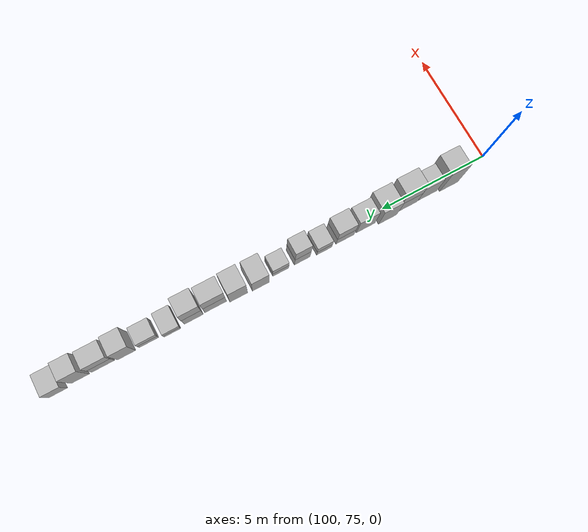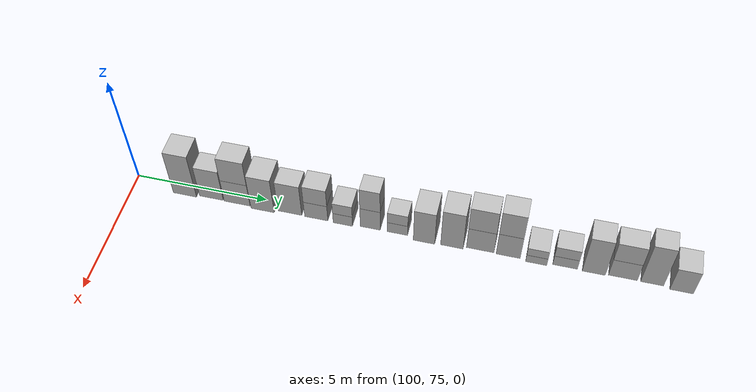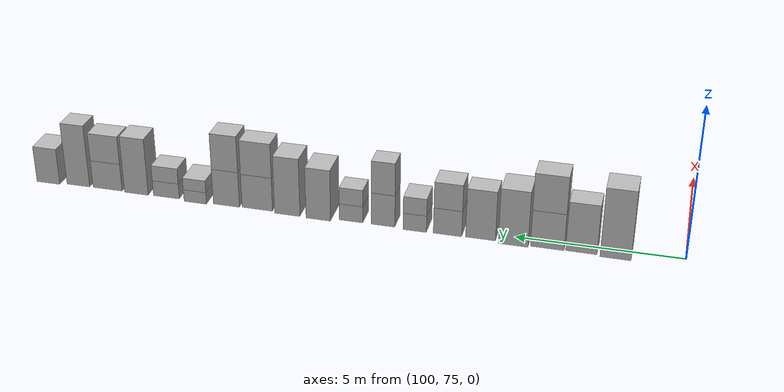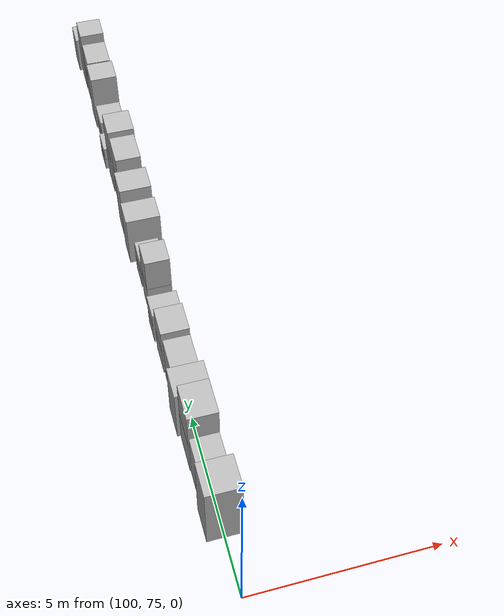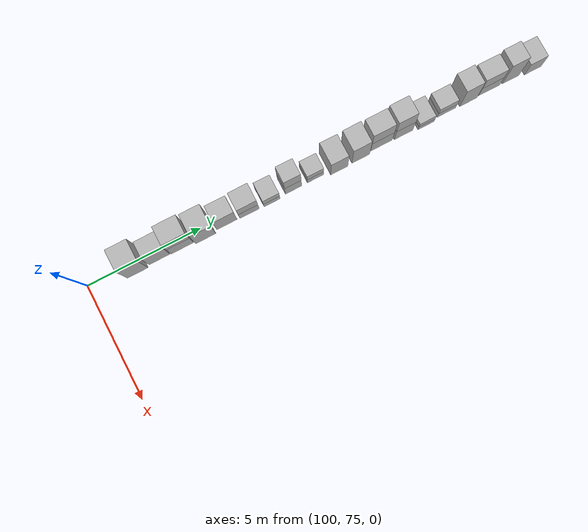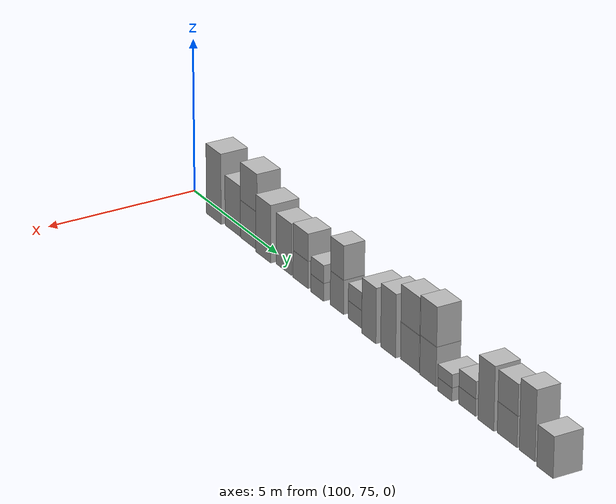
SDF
<sdf version="1.5">
 <world name="default">
  <model name="ground_plane">
   <static>true</static>
   <link name="link">
    <collision name="collision">
     <geometry><plane><normal>0 0 1</normal><size>250 250</size></plane></geometry>
     <surface><friction><ode><mu>1</mu><mu2>1</mu2></ode></friction></surface>
    </collision>
    <visual name="grass">
     <cast_shadows>false</cast_shadows>
     <geometry><mesh><uri>file://grass_plane/meshes/grass_plane.dae</uri></mesh></geometry>
    </visual>
   </link>
  </model>
  <model name="Cardboard_box_447">
   <link name="link_0">
    <pose>100 77 0 0 0 0</pose>
    <inertial>
     <mass>1</mass>
     <inertia>
      <ixx>0.166667</ixx>
      <ixy>0</ixy>
      <ixz>0</ixz>
      <iyy>0.166667</iyy>
      <iyz>0</iyz>
      <izz>0.166667</izz>
     </inertia>
    </inertial>
    <collision name="collision">
     <geometry>
      <mesh>
       <uri>model://Cardboard_box/meshes/cardboard_box.dae</uri>
       <scale>2.33396862583 2.27019564261 5.81903263411</scale>
      </mesh>
     </geometry>
    </collision>
    <visual name="visual">
     <geometry>
      <mesh>
       <uri>model://Cardboard_box/meshes/cardboard_box.dae</uri>
       <scale>2.33396862583 2.27019564261 5.81903263411</scale>
      </mesh>
     </geometry>
    </visual>
   </link>
   <static>1</static>
  </model>
  <model name="Cardboard_box_448">
   <link name="link_0">
    <pose>100 78 0 0 0 0</pose>
    <inertial>
     <mass>1</mass>
     <inertia>
      <ixx>0.166667</ixx>
      <ixy>0</ixy>
      <ixz>0</ixz>
      <iyy>0.166667</iyy>
      <iyz>0</iyz>
      <izz>0.166667</izz>
     </inertia>
    </inertial>
    <collision name="collision">
     <geometry>
      <mesh>
       <uri>model://Cardboard_box/meshes/cardboard_box.dae</uri>
       <scale>1.91822745753 2.30396470303 4.15649201687</scale>
      </mesh>
     </geometry>
    </collision>
    <visual name="visual">
     <geometry>
      <mesh>
       <uri>model://Cardboard_box/meshes/cardboard_box.dae</uri>
       <scale>1.91822745753 2.30396470303 4.15649201687</scale>
      </mesh>
     </geometry>
    </visual>
   </link>
   <static>1</static>
  </model>
  <model name="Cardboard_box_449">
   <link name="link_0">
    <pose>100 79 0 0 0 0</pose>
    <inertial>
     <mass>1</mass>
     <inertia>
      <ixx>0.166667</ixx>
      <ixy>0</ixy>
      <ixz>0</ixz>
      <iyy>0.166667</iyy>
      <iyz>0</iyz>
      <izz>0.166667</izz>
     </inertia>
    </inertial>
    <collision name="collision">
     <geometry>
      <mesh>
       <uri>model://Cardboard_box/meshes/cardboard_box.dae</uri>
       <scale>2.01274408284 2.49988306649 3.09534436703</scale>
      </mesh>
     </geometry>
    </collision>
    <visual name="visual">
     <geometry>
      <mesh>
       <uri>model://Cardboard_box/meshes/cardboard_box.dae</uri>
       <scale>2.01274408284 2.49988306649 3.09534436703</scale>
      </mesh>
     </geometry>
    </visual>
   </link>
   <static>1</static>
  </model>
  <model name="Cardboard_box_top_449">
   <link name="link_0">
    <pose>100 79 1.23813774681 0 0 0</pose>
    <inertial>
     <mass>1</mass>
     <inertia>
      <ixx>0.166667</ixx>
      <ixy>0</ixy>
      <ixz>0</ixz>
      <iyy>0.166667</iyy>
      <iyz>0</iyz>
      <izz>0.166667</izz>
     </inertia>
    </inertial>
    <collision name="collision">
     <geometry>
      <mesh>
       <uri>model://Cardboard_box/meshes/cardboard_box.dae</uri>
       <scale>2.01274408284 2.49988306649 3.09534436703</scale>
      </mesh>
     </geometry>
    </collision>
    <visual name="visual">
     <geometry>
      <mesh>
       <uri>model://Cardboard_box/meshes/cardboard_box.dae</uri>
       <scale>2.01274408284 2.49988306649 3.09534436703</scale>
      </mesh>
     </geometry>
    </visual>
   </link>
   <static>1</static>
  </model>
  <model name="Cardboard_box_450">
   <link name="link_0">
    <pose>100 80 0 0 0 0</pose>
    <inertial>
     <mass>1</mass>
     <inertia>
      <ixx>0.166667</ixx>
      <ixy>0</ixy>
      <ixz>0</ixz>
      <iyy>0.166667</iyy>
      <iyz>0</iyz>
      <izz>0.166667</izz>
     </inertia>
    </inertial>
    <collision name="collision">
     <geometry>
      <mesh>
       <uri>model://Cardboard_box/meshes/cardboard_box.dae</uri>
       <scale>2.43324160354 2.22829430216 4.70998665054</scale>
      </mesh>
     </geometry>
    </collision>
    <visual name="visual">
     <geometry>
      <mesh>
       <uri>model://Cardboard_box/meshes/cardboard_box.dae</uri>
       <scale>2.43324160354 2.22829430216 4.70998665054</scale>
      </mesh>
     </geometry>
    </visual>
   </link>
   <static>1</static>
  </model>
  <model name="Cardboard_box_451">
   <link name="link_0">
    <pose>100 81 0 0 0 0</pose>
    <inertial>
     <mass>1</mass>
     <inertia>
      <ixx>0.166667</ixx>
      <ixy>0</ixy>
      <ixz>0</ixz>
      <iyy>0.166667</iyy>
      <iyz>0</iyz>
      <izz>0.166667</izz>
     </inertia>
    </inertial>
    <collision name="collision">
     <geometry>
      <mesh>
       <uri>model://Cardboard_box/meshes/cardboard_box.dae</uri>
       <scale>1.85269713805 2.26463404516 4.1896618565</scale>
      </mesh>
     </geometry>
    </collision>
    <visual name="visual">
     <geometry>
      <mesh>
       <uri>model://Cardboard_box/meshes/cardboard_box.dae</uri>
       <scale>1.85269713805 2.26463404516 4.1896618565</scale>
      </mesh>
     </geometry>
    </visual>
   </link>
   <static>1</static>
  </model>
  <model name="Cardboard_box_452">
   <link name="link_0">
    <pose>100 82 0 0 0 0</pose>
    <inertial>
     <mass>1</mass>
     <inertia>
      <ixx>0.166667</ixx>
      <ixy>0</ixy>
      <ixz>0</ixz>
      <iyy>0.166667</iyy>
      <iyz>0</iyz>
      <izz>0.166667</izz>
     </inertia>
    </inertial>
    <collision name="collision">
     <geometry>
      <mesh>
       <uri>model://Cardboard_box/meshes/cardboard_box.dae</uri>
       <scale>1.95341575762 2.17920243876 2.20509427299</scale>
      </mesh>
     </geometry>
    </collision>
    <visual name="visual">
     <geometry>
      <mesh>
       <uri>model://Cardboard_box/meshes/cardboard_box.dae</uri>
       <scale>1.95341575762 2.17920243876 2.20509427299</scale>
      </mesh>
     </geometry>
    </visual>
   </link>
   <static>1</static>
  </model>
  <model name="Cardboard_box_top_452">
   <link name="link_0">
    <pose>100 82 0.882037709195 0 0 0</pose>
    <inertial>
     <mass>1</mass>
     <inertia>
      <ixx>0.166667</ixx>
      <ixy>0</ixy>
      <ixz>0</ixz>
      <iyy>0.166667</iyy>
      <iyz>0</iyz>
      <izz>0.166667</izz>
     </inertia>
    </inertial>
    <collision name="collision">
     <geometry>
      <mesh>
       <uri>model://Cardboard_box/meshes/cardboard_box.dae</uri>
       <scale>1.95341575762 2.17920243876 2.20509427299</scale>
      </mesh>
     </geometry>
    </collision>
    <visual name="visual">
     <geometry>
      <mesh>
       <uri>model://Cardboard_box/meshes/cardboard_box.dae</uri>
       <scale>1.95341575762 2.17920243876 2.20509427299</scale>
      </mesh>
     </geometry>
    </visual>
   </link>
   <static>1</static>
  </model>
  <model name="Cardboard_box_453">
   <link name="link_0">
    <pose>100 83 0 0 0 0</pose>
    <inertial>
     <mass>1</mass>
     <inertia>
      <ixx>0.166667</ixx>
      <ixy>0</ixy>
      <ixz>0</ixz>
      <iyy>0.166667</iyy>
      <iyz>0</iyz>
      <izz>0.166667</izz>
     </inertia>
    </inertial>
    <collision name="collision">
     <geometry>
      <mesh>
       <uri>model://Cardboard_box/meshes/cardboard_box.dae</uri>
       <scale>2.08894755823 1.81040913457 1.43966650593</scale>
      </mesh>
     </geometry>
    </collision>
    <visual name="visual">
     <geometry>
      <mesh>
       <uri>model://Cardboard_box/meshes/cardboard_box.dae</uri>
       <scale>2.08894755823 1.81040913457 1.43966650593</scale>
      </mesh>
     </geometry>
    </visual>
   </link>
   <static>1</static>
  </model>
  <model name="Cardboard_box_top_453">
   <link name="link_0">
    <pose>100 83 0.575866602373 0 0 0</pose>
    <inertial>
     <mass>1</mass>
     <inertia>
      <ixx>0.166667</ixx>
      <ixy>0</ixy>
      <ixz>0</ixz>
      <iyy>0.166667</iyy>
      <iyz>0</iyz>
      <izz>0.166667</izz>
     </inertia>
    </inertial>
    <collision name="collision">
     <geometry>
      <mesh>
       <uri>model://Cardboard_box/meshes/cardboard_box.dae</uri>
       <scale>2.08894755823 1.81040913457 1.43966650593</scale>
      </mesh>
     </geometry>
    </collision>
    <visual name="visual">
     <geometry>
      <mesh>
       <uri>model://Cardboard_box/meshes/cardboard_box.dae</uri>
       <scale>2.08894755823 1.81040913457 1.43966650593</scale>
      </mesh>
     </geometry>
    </visual>
   </link>
   <static>1</static>
  </model>
  <model name="Cardboard_box_454">
   <link name="link_0">
    <pose>100 84 0 0 0 0</pose>
    <inertial>
     <mass>1</mass>
     <inertia>
      <ixx>0.166667</ixx>
      <ixy>0</ixy>
      <ixz>0</ixz>
      <iyy>0.166667</iyy>
      <iyz>0</iyz>
      <izz>0.166667</izz>
     </inertia>
    </inertial>
    <collision name="collision">
     <geometry>
      <mesh>
       <uri>model://Cardboard_box/meshes/cardboard_box.dae</uri>
       <scale>1.76180157544 1.85529118728 2.74051122874</scale>
      </mesh>
     </geometry>
    </collision>
    <visual name="visual">
     <geometry>
      <mesh>
       <uri>model://Cardboard_box/meshes/cardboard_box.dae</uri>
       <scale>1.76180157544 1.85529118728 2.74051122874</scale>
      </mesh>
     </geometry>
    </visual>
   </link>
   <static>1</static>
  </model>
  <model name="Cardboard_box_top_454">
   <link name="link_0">
    <pose>100 84 1.09620449149 0 0 0</pose>
    <inertial>
     <mass>1</mass>
     <inertia>
      <ixx>0.166667</ixx>
      <ixy>0</ixy>
      <ixz>0</ixz>
      <iyy>0.166667</iyy>
      <iyz>0</iyz>
      <izz>0.166667</izz>
     </inertia>
    </inertial>
    <collision name="collision">
     <geometry>
      <mesh>
       <uri>model://Cardboard_box/meshes/cardboard_box.dae</uri>
       <scale>1.76180157544 1.85529118728 2.74051122874</scale>
      </mesh>
     </geometry>
    </collision>
    <visual name="visual">
     <geometry>
      <mesh>
       <uri>model://Cardboard_box/meshes/cardboard_box.dae</uri>
       <scale>1.76180157544 1.85529118728 2.74051122874</scale>
      </mesh>
     </geometry>
    </visual>
   </link>
   <static>1</static>
  </model>
  <model name="Cardboard_box_455">
   <link name="link_0">
    <pose>100 85 0 0 0 0</pose>
    <inertial>
     <mass>1</mass>
     <inertia>
      <ixx>0.166667</ixx>
      <ixy>0</ixy>
      <ixz>0</ixz>
      <iyy>0.166667</iyy>
      <iyz>0</iyz>
      <izz>0.166667</izz>
     </inertia>
    </inertial>
    <collision name="collision">
     <geometry>
      <mesh>
       <uri>model://Cardboard_box/meshes/cardboard_box.dae</uri>
       <scale>1.75421698773 1.86614398578 1.4213398891</scale>
      </mesh>
     </geometry>
    </collision>
    <visual name="visual">
     <geometry>
      <mesh>
       <uri>model://Cardboard_box/meshes/cardboard_box.dae</uri>
       <scale>1.75421698773 1.86614398578 1.4213398891</scale>
      </mesh>
     </geometry>
    </visual>
   </link>
   <static>1</static>
  </model>
  <model name="Cardboard_box_top_455">
   <link name="link_0">
    <pose>100 85 0.568535955639 0 0 0</pose>
    <inertial>
     <mass>1</mass>
     <inertia>
      <ixx>0.166667</ixx>
      <ixy>0</ixy>
      <ixz>0</ixz>
      <iyy>0.166667</iyy>
      <iyz>0</iyz>
      <izz>0.166667</izz>
     </inertia>
    </inertial>
    <collision name="collision">
     <geometry>
      <mesh>
       <uri>model://Cardboard_box/meshes/cardboard_box.dae</uri>
       <scale>1.75421698773 1.86614398578 1.4213398891</scale>
      </mesh>
     </geometry>
    </collision>
    <visual name="visual">
     <geometry>
      <mesh>
       <uri>model://Cardboard_box/meshes/cardboard_box.dae</uri>
       <scale>1.75421698773 1.86614398578 1.4213398891</scale>
      </mesh>
     </geometry>
    </visual>
   </link>
   <static>1</static>
  </model>
  <model name="Cardboard_box_456">
   <link name="link_0">
    <pose>100 86 0 0 0 0</pose>
    <inertial>
     <mass>1</mass>
     <inertia>
      <ixx>0.166667</ixx>
      <ixy>0</ixy>
      <ixz>0</ixz>
      <iyy>0.166667</iyy>
      <iyz>0</iyz>
      <izz>0.166667</izz>
     </inertia>
    </inertial>
    <collision name="collision">
     <geometry>
      <mesh>
       <uri>model://Cardboard_box/meshes/cardboard_box.dae</uri>
       <scale>2.48885763139 1.95519050598 4.41540428919</scale>
      </mesh>
     </geometry>
    </collision>
    <visual name="visual">
     <geometry>
      <mesh>
       <uri>model://Cardboard_box/meshes/cardboard_box.dae</uri>
       <scale>2.48885763139 1.95519050598 4.41540428919</scale>
      </mesh>
     </geometry>
    </visual>
   </link>
   <static>1</static>
  </model>
  <model name="Cardboard_box_457">
   <link name="link_0">
    <pose>100 87 0 0 0 0</pose>
    <inertial>
     <mass>1</mass>
     <inertia>
      <ixx>0.166667</ixx>
      <ixy>0</ixy>
      <ixz>0</ixz>
      <iyy>0.166667</iyy>
      <iyz>0</iyz>
      <izz>0.166667</izz>
     </inertia>
    </inertial>
    <collision name="collision">
     <geometry>
      <mesh>
       <uri>model://Cardboard_box/meshes/cardboard_box.dae</uri>
       <scale>2.33738241199 2.03751161731 5.01915116326</scale>
      </mesh>
     </geometry>
    </collision>
    <visual name="visual">
     <geometry>
      <mesh>
       <uri>model://Cardboard_box/meshes/cardboard_box.dae</uri>
       <scale>2.33738241199 2.03751161731 5.01915116326</scale>
      </mesh>
     </geometry>
    </visual>
   </link>
   <static>1</static>
  </model>
  <model name="Cardboard_box_458">
   <link name="link_0">
    <pose>100 88 0 0 0 0</pose>
    <inertial>
     <mass>1</mass>
     <inertia>
      <ixx>0.166667</ixx>
      <ixy>0</ixy>
      <ixz>0</ixz>
      <iyy>0.166667</iyy>
      <iyz>0</iyz>
      <izz>0.166667</izz>
     </inertia>
    </inertial>
    <collision name="collision">
     <geometry>
      <mesh>
       <uri>model://Cardboard_box/meshes/cardboard_box.dae</uri>
       <scale>1.86085005303 2.48178522059 2.92962249433</scale>
      </mesh>
     </geometry>
    </collision>
    <visual name="visual">
     <geometry>
      <mesh>
       <uri>model://Cardboard_box/meshes/cardboard_box.dae</uri>
       <scale>1.86085005303 2.48178522059 2.92962249433</scale>
      </mesh>
     </geometry>
    </visual>
   </link>
   <static>1</static>
  </model>
  <model name="Cardboard_box_top_458">
   <link name="link_0">
    <pose>100 88 1.17184899773 0 0 0</pose>
    <inertial>
     <mass>1</mass>
     <inertia>
      <ixx>0.166667</ixx>
      <ixy>0</ixy>
      <ixz>0</ixz>
      <iyy>0.166667</iyy>
      <iyz>0</iyz>
      <izz>0.166667</izz>
     </inertia>
    </inertial>
    <collision name="collision">
     <geometry>
      <mesh>
       <uri>model://Cardboard_box/meshes/cardboard_box.dae</uri>
       <scale>1.86085005303 2.48178522059 2.92962249433</scale>
      </mesh>
     </geometry>
    </collision>
    <visual name="visual">
     <geometry>
      <mesh>
       <uri>model://Cardboard_box/meshes/cardboard_box.dae</uri>
       <scale>1.86085005303 2.48178522059 2.92962249433</scale>
      </mesh>
     </geometry>
    </visual>
   </link>
   <static>1</static>
  </model>
  <model name="Cardboard_box_459">
   <link name="link_0">
    <pose>100 89 0 0 0 0</pose>
    <inertial>
     <mass>1</mass>
     <inertia>
      <ixx>0.166667</ixx>
      <ixy>0</ixy>
      <ixz>0</ixz>
      <iyy>0.166667</iyy>
      <iyz>0</iyz>
      <izz>0.166667</izz>
     </inertia>
    </inertial>
    <collision name="collision">
     <geometry>
      <mesh>
       <uri>model://Cardboard_box/meshes/cardboard_box.dae</uri>
       <scale>1.9972055246 2.153377451 3.09245053398</scale>
      </mesh>
     </geometry>
    </collision>
    <visual name="visual">
     <geometry>
      <mesh>
       <uri>model://Cardboard_box/meshes/cardboard_box.dae</uri>
       <scale>1.9972055246 2.153377451 3.09245053398</scale>
      </mesh>
     </geometry>
    </visual>
   </link>
   <static>1</static>
  </model>
  <model name="Cardboard_box_top_459">
   <link name="link_0">
    <pose>100 89 1.23698021359 0 0 0</pose>
    <inertial>
     <mass>1</mass>
     <inertia>
      <ixx>0.166667</ixx>
      <ixy>0</ixy>
      <ixz>0</ixz>
      <iyy>0.166667</iyy>
      <iyz>0</iyz>
      <izz>0.166667</izz>
     </inertia>
    </inertial>
    <collision name="collision">
     <geometry>
      <mesh>
       <uri>model://Cardboard_box/meshes/cardboard_box.dae</uri>
       <scale>1.9972055246 2.153377451 3.09245053398</scale>
      </mesh>
     </geometry>
    </collision>
    <visual name="visual">
     <geometry>
      <mesh>
       <uri>model://Cardboard_box/meshes/cardboard_box.dae</uri>
       <scale>1.9972055246 2.153377451 3.09245053398</scale>
      </mesh>
     </geometry>
    </visual>
   </link>
   <static>1</static>
  </model>
  <model name="Cardboard_box_460">
   <link name="link_0">
    <pose>100 90 0 0 0 0</pose>
    <inertial>
     <mass>1</mass>
     <inertia>
      <ixx>0.166667</ixx>
      <ixy>0</ixy>
      <ixz>0</ixz>
      <iyy>0.166667</iyy>
      <iyz>0</iyz>
      <izz>0.166667</izz>
     </inertia>
    </inertial>
    <collision name="collision">
     <geometry>
      <mesh>
       <uri>model://Cardboard_box/meshes/cardboard_box.dae</uri>
       <scale>2.39316343854 1.86877877137 1.03770554003</scale>
      </mesh>
     </geometry>
    </collision>
    <visual name="visual">
     <geometry>
      <mesh>
       <uri>model://Cardboard_box/meshes/cardboard_box.dae</uri>
       <scale>2.39316343854 1.86877877137 1.03770554003</scale>
      </mesh>
     </geometry>
    </visual>
   </link>
   <static>1</static>
  </model>
  <model name="Cardboard_box_top_460">
   <link name="link_0">
    <pose>100 90 0.41508221601 0 0 0</pose>
    <inertial>
     <mass>1</mass>
     <inertia>
      <ixx>0.166667</ixx>
      <ixy>0</ixy>
      <ixz>0</ixz>
      <iyy>0.166667</iyy>
      <iyz>0</iyz>
      <izz>0.166667</izz>
     </inertia>
    </inertial>
    <collision name="collision">
     <geometry>
      <mesh>
       <uri>model://Cardboard_box/meshes/cardboard_box.dae</uri>
       <scale>2.39316343854 1.86877877137 1.03770554003</scale>
      </mesh>
     </geometry>
    </collision>
    <visual name="visual">
     <geometry>
      <mesh>
       <uri>model://Cardboard_box/meshes/cardboard_box.dae</uri>
       <scale>2.39316343854 1.86877877137 1.03770554003</scale>
      </mesh>
     </geometry>
    </visual>
   </link>
   <static>1</static>
  </model>
  <model name="Cardboard_box_461">
   <link name="link_0">
    <pose>100 91 0 0 0 0</pose>
    <inertial>
     <mass>1</mass>
     <inertia>
      <ixx>0.166667</ixx>
      <ixy>0</ixy>
      <ixz>0</ixz>
      <iyy>0.166667</iyy>
      <iyz>0</iyz>
      <izz>0.166667</izz>
     </inertia>
    </inertial>
    <collision name="collision">
     <geometry>
      <mesh>
       <uri>model://Cardboard_box/meshes/cardboard_box.dae</uri>
       <scale>1.9126142518 2.16927970256 1.34473200062</scale>
      </mesh>
     </geometry>
    </collision>
    <visual name="visual">
     <geometry>
      <mesh>
       <uri>model://Cardboard_box/meshes/cardboard_box.dae</uri>
       <scale>1.9126142518 2.16927970256 1.34473200062</scale>
      </mesh>
     </geometry>
    </visual>
   </link>
   <static>1</static>
  </model>
  <model name="Cardboard_box_top_461">
   <link name="link_0">
    <pose>100 91 0.537892800249 0 0 0</pose>
    <inertial>
     <mass>1</mass>
     <inertia>
      <ixx>0.166667</ixx>
      <ixy>0</ixy>
      <ixz>0</ixz>
      <iyy>0.166667</iyy>
      <iyz>0</iyz>
      <izz>0.166667</izz>
     </inertia>
    </inertial>
    <collision name="collision">
     <geometry>
      <mesh>
       <uri>model://Cardboard_box/meshes/cardboard_box.dae</uri>
       <scale>1.9126142518 2.16927970256 1.34473200062</scale>
      </mesh>
     </geometry>
    </collision>
    <visual name="visual">
     <geometry>
      <mesh>
       <uri>model://Cardboard_box/meshes/cardboard_box.dae</uri>
       <scale>1.9126142518 2.16927970256 1.34473200062</scale>
      </mesh>
     </geometry>
    </visual>
   </link>
   <static>1</static>
  </model>
  <model name="Cardboard_box_462">
   <link name="link_0">
    <pose>100 92 0 0 0 0</pose>
    <inertial>
     <mass>1</mass>
     <inertia>
      <ixx>0.166667</ixx>
      <ixy>0</ixy>
      <ixz>0</ixz>
      <iyy>0.166667</iyy>
      <iyz>0</iyz>
      <izz>0.166667</izz>
     </inertia>
    </inertial>
    <collision name="collision">
     <geometry>
      <mesh>
       <uri>model://Cardboard_box/meshes/cardboard_box.dae</uri>
       <scale>2.06452398165 2.00991684175 4.99749058875</scale>
      </mesh>
     </geometry>
    </collision>
    <visual name="visual">
     <geometry>
      <mesh>
       <uri>model://Cardboard_box/meshes/cardboard_box.dae</uri>
       <scale>2.06452398165 2.00991684175 4.99749058875</scale>
      </mesh>
     </geometry>
    </visual>
   </link>
   <static>1</static>
  </model>
  <model name="Cardboard_box_463">
   <link name="link_0">
    <pose>100 93 0 0 0 0</pose>
    <inertial>
     <mass>1</mass>
     <inertia>
      <ixx>0.166667</ixx>
      <ixy>0</ixy>
      <ixz>0</ixz>
      <iyy>0.166667</iyy>
      <iyz>0</iyz>
      <izz>0.166667</izz>
     </inertia>
    </inertial>
    <collision name="collision">
     <geometry>
      <mesh>
       <uri>model://Cardboard_box/meshes/cardboard_box.dae</uri>
       <scale>1.8528229058 2.49547384571 2.41973892818</scale>
      </mesh>
     </geometry>
    </collision>
    <visual name="visual">
     <geometry>
      <mesh>
       <uri>model://Cardboard_box/meshes/cardboard_box.dae</uri>
       <scale>1.8528229058 2.49547384571 2.41973892818</scale>
      </mesh>
     </geometry>
    </visual>
   </link>
   <static>1</static>
  </model>
  <model name="Cardboard_box_top_463">
   <link name="link_0">
    <pose>100 93 0.967895571271 0 0 0</pose>
    <inertial>
     <mass>1</mass>
     <inertia>
      <ixx>0.166667</ixx>
      <ixy>0</ixy>
      <ixz>0</ixz>
      <iyy>0.166667</iyy>
      <iyz>0</iyz>
      <izz>0.166667</izz>
     </inertia>
    </inertial>
    <collision name="collision">
     <geometry>
      <mesh>
       <uri>model://Cardboard_box/meshes/cardboard_box.dae</uri>
       <scale>1.8528229058 2.49547384571 2.41973892818</scale>
      </mesh>
     </geometry>
    </collision>
    <visual name="visual">
     <geometry>
      <mesh>
       <uri>model://Cardboard_box/meshes/cardboard_box.dae</uri>
       <scale>1.8528229058 2.49547384571 2.41973892818</scale>
      </mesh>
     </geometry>
    </visual>
   </link>
   <static>1</static>
  </model>
  <model name="Cardboard_box_464">
   <link name="link_0">
    <pose>100 94 0 0 0 0</pose>
    <inertial>
     <mass>1</mass>
     <inertia>
      <ixx>0.166667</ixx>
      <ixy>0</ixy>
      <ixz>0</ixz>
      <iyy>0.166667</iyy>
      <iyz>0</iyz>
      <izz>0.166667</izz>
     </inertia>
    </inertial>
    <collision name="collision">
     <geometry>
      <mesh>
       <uri>model://Cardboard_box/meshes/cardboard_box.dae</uri>
       <scale>1.90571710248 1.96660238832 5.48170596408</scale>
      </mesh>
     </geometry>
    </collision>
    <visual name="visual">
     <geometry>
      <mesh>
       <uri>model://Cardboard_box/meshes/cardboard_box.dae</uri>
       <scale>1.90571710248 1.96660238832 5.48170596408</scale>
      </mesh>
     </geometry>
    </visual>
   </link>
   <static>1</static>
  </model>
  <model name="Cardboard_box_465">
   <link name="link_0">
    <pose>100 95 0 0 0 0</pose>
    <inertial>
     <mass>1</mass>
     <inertia>
      <ixx>0.166667</ixx>
      <ixy>0</ixy>
      <ixz>0</ixz>
      <iyy>0.166667</iyy>
      <iyz>0</iyz>
      <izz>0.166667</izz>
     </inertia>
    </inertial>
    <collision name="collision">
     <geometry>
      <mesh>
       <uri>model://Cardboard_box/meshes/cardboard_box.dae</uri>
       <scale>2.34140249197 1.99526589595 3.18075012451</scale>
      </mesh>
     </geometry>
    </collision>
    <visual name="visual">
     <geometry>
      <mesh>
       <uri>model://Cardboard_box/meshes/cardboard_box.dae</uri>
       <scale>2.34140249197 1.99526589595 3.18075012451</scale>
      </mesh>
     </geometry>
    </visual>
   </link>
   <static>1</static>
  </model>
 </world>
</sdf>
